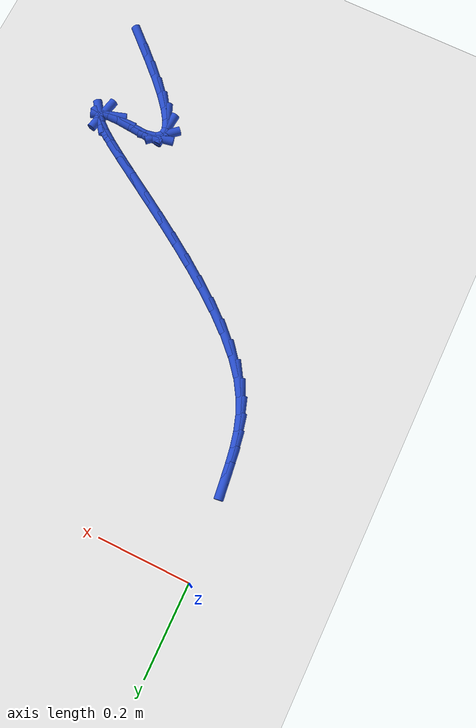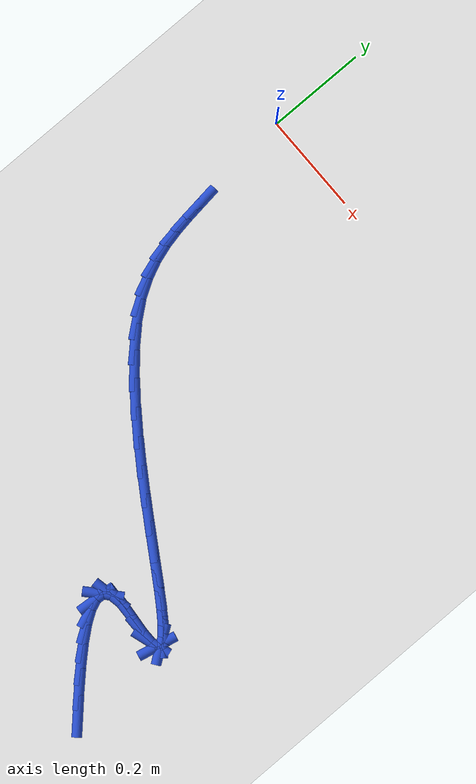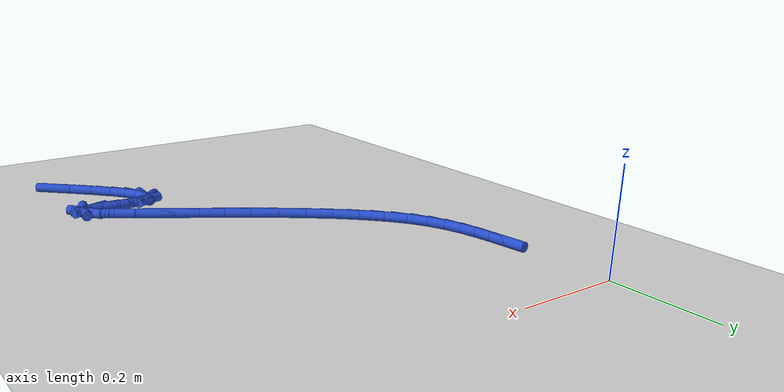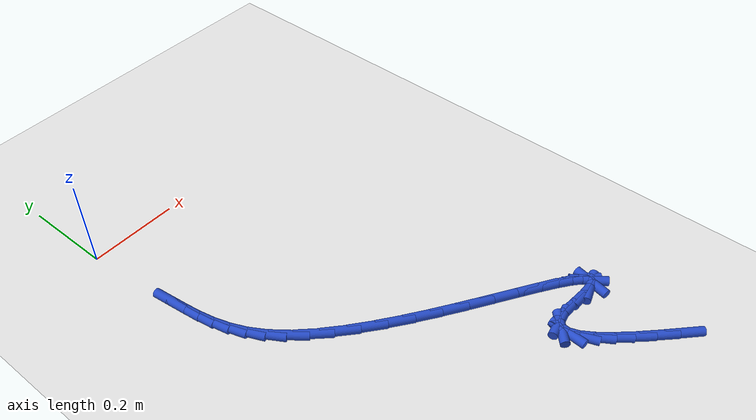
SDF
<sdf version="1.6">
 <world name="default">
  <model name="ground_plane">
   <static>1</static>
   <link name="link">
    <collision name="collision">
     <geometry><plane><normal>0 0 1</normal><size>100 100</size></plane></geometry>
     <surface><friction><ode><mu>100</mu><mu2>50</mu2></ode></friction></surface>
    </collision>
    <visual name="visual">
     <cast_shadows>0</cast_shadows>
     <geometry><plane><normal>0 0 1</normal><size>100 100</size></plane></geometry>
     <material>
      <script><uri>file://media/materials/scripts/gazebo.material</uri><name>Gazebo/WhiteGlow</name></script>
     </material>
    </visual>
   </link>
  </model>
  <model name="line">
   <link name="link_249">
    <pose>0.6120593548678455 -1.016963462170982 0.01 0 1.57 -0.7558949744982144</pose>
    <collision name="collision">
     <geometry><cylinder><radius>0.01</radius><length>0.08</length></cylinder></geometry>
    </collision>
    <visual name="visual">
     <material>
      <script><name>Gazebo/Blue</name><uri>file://media/materials/scripts/gazebo.material</uri></script>
     </material>
     <geometry><cylinder><radius>0.01</radius><length>0.08</length></cylinder></geometry>
    </visual>
   </link>
   <link name="link_250">
    <pose>0.5752487484459166 -0.982263264862262 0.01 0 1.57 -0.780347250309512</pose>
    <collision name="collision">
     <geometry><cylinder><radius>0.01</radius><length>0.08</length></cylinder></geometry>
    </collision>
    <visual name="visual">
     <material>
      <script><name>Gazebo/Blue</name><uri>file://media/materials/scripts/gazebo.material</uri></script>
     </material>
     <geometry><cylinder><radius>0.01</radius><length>0.08</length></cylinder></geometry>
    </visual>
   </link>
   <link name="link_251">
    <pose>0.5420642941654308 -0.9494123523167572 0.01 0 1.57 -0.8189740143601638</pose>
    <collision name="collision">
     <geometry><cylinder><radius>0.01</radius><length>0.08</length></cylinder></geometry>
    </collision>
    <visual name="visual">
     <material>
      <script><name>Gazebo/Blue</name><uri>file://media/materials/scripts/gazebo.material</uri></script>
     </material>
     <geometry><cylinder><radius>0.01</radius><length>0.08</length></cylinder></geometry>
    </visual>
   </link>
   <link name="link_252">
    <pose>0.5135935040853149 -0.9189625080559768 0.01 0 1.57 -0.8813297267739069</pose>
    <collision name="collision">
     <geometry><cylinder><radius>0.01</radius><length>0.08</length></cylinder></geometry>
    </collision>
    <visual name="visual">
     <material>
      <script><name>Gazebo/Blue</name><uri>file://media/materials/scripts/gazebo.material</uri></script>
     </material>
     <geometry><cylinder><radius>0.01</radius><length>0.08</length></cylinder></geometry>
    </visual>
   </link>
   <link name="link_253">
    <pose>0.4909238902644962 -0.8914655156014305 0.01 0 1.57 -0.9889936092993643</pose>
    <collision name="collision">
     <geometry><cylinder><radius>0.01</radius><length>0.08</length></cylinder></geometry>
    </collision>
    <visual name="visual">
     <material>
      <script><name>Gazebo/Blue</name><uri>file://media/materials/scripts/gazebo.material</uri></script>
     </material>
     <geometry><cylinder><radius>0.01</radius><length>0.08</length></cylinder></geometry>
    </visual>
   </link>
   <link name="link_254">
    <pose>0.4751429647619019 -0.8674731584746279 0.01 0 1.57 -1.19764741292546</pose>
    <collision name="collision">
     <geometry><cylinder><radius>0.01</radius><length>0.08</length></cylinder></geometry>
    </collision>
    <visual name="visual">
     <material>
      <script><name>Gazebo/Blue</name><uri>file://media/materials/scripts/gazebo.material</uri></script>
     </material>
     <geometry><cylinder><radius>0.01</radius><length>0.08</length></cylinder></geometry>
    </visual>
   </link>
   <link name="link_255">
    <pose>0.46733823963645926 -0.8475372201970789 0.01 0 1.57 1.488842447986992</pose>
    <collision name="collision">
     <geometry><cylinder><radius>0.01</radius><length>0.08</length></cylinder></geometry>
    </collision>
    <visual name="visual">
     <material>
      <script><name>Gazebo/Blue</name><uri>file://media/materials/scripts/gazebo.material</uri></script>
     </material>
     <geometry><cylinder><radius>0.01</radius><length>0.08</length></cylinder></geometry>
    </visual>
   </link>
   <link name="link_256">
    <pose>0.4685972269470953 -0.8322094842902923 0.01 0 1.57 0.7278815447678283</pose>
    <collision name="collision">
     <geometry><cylinder><radius>0.01</radius><length>0.08</length></cylinder></geometry>
    </collision>
    <visual name="visual">
     <material>
      <script><name>Gazebo/Blue</name><uri>file://media/materials/scripts/gazebo.material</uri></script>
     </material>
     <geometry><cylinder><radius>0.01</radius><length>0.08</length></cylinder></geometry>
    </visual>
   </link>
   <link name="link_257">
    <pose>0.4800074387527375 -0.8220417342757784 0.01 0 1.57 0.19426011480731967</pose>
    <collision name="collision">
     <geometry><cylinder><radius>0.01</radius><length>0.08</length></cylinder></geometry>
    </collision>
    <visual name="visual">
     <material>
      <script><name>Gazebo/Blue</name><uri>file://media/materials/scripts/gazebo.material</uri></script>
     </material>
     <geometry><cylinder><radius>0.01</radius><length>0.08</length></cylinder></geometry>
    </visual>
   </link>
   <link name="link_258">
    <pose>0.5026563871123126 -0.8175857536750464 0.01 0 1.57 -0.0395408759311653</pose>
    <collision name="collision">
     <geometry><cylinder><radius>0.01</radius><length>0.08</length></cylinder></geometry>
    </collision>
    <visual name="visual">
     <material>
      <script><name>Gazebo/Blue</name><uri>file://media/materials/scripts/gazebo.material</uri></script>
     </material>
     <geometry><cylinder><radius>0.01</radius><length>0.08</length></cylinder></geometry>
    </visual>
   </link>
   <link name="link_259">
    <pose>0.5365182909957565 -0.8189253812487708 0.01 0 1.57 -0.0896402998434432</pose>
    <collision name="collision">
     <geometry><cylinder><radius>0.01</radius><length>0.08</length></cylinder></geometry>
    </collision>
    <visual name="visual">
     <material>
      <script><name>Gazebo/Blue</name><uri>file://media/materials/scripts/gazebo.material</uri></script>
     </material>
     <geometry><cylinder><radius>0.01</radius><length>0.08</length></cylinder></geometry>
    </visual>
   </link>
   <link name="link_260">
    <pose>0.5719741749338321 -0.8221121976560779 0.01 0 1.57 0.00028335559197801815</pose>
    <collision name="collision">
     <geometry><cylinder><radius>0.01</radius><length>0.08</length></cylinder></geometry>
    </collision>
    <visual name="visual">
     <material>
      <script><name>Gazebo/Blue</name><uri>file://media/materials/scripts/gazebo.material</uri></script>
     </material>
     <geometry><cylinder><radius>0.01</radius><length>0.08</length></cylinder></geometry>
    </visual>
   </link>
   <link name="link_261">
    <pose>0.5969206920723124 -0.8221051289207572 0.01 0 1.57 0.3092605812015715</pose>
    <collision name="collision">
     <geometry><cylinder><radius>0.01</radius><length>0.08</length></cylinder></geometry>
    </collision>
    <visual name="visual">
     <material>
      <script><name>Gazebo/Blue</name><uri>file://media/materials/scripts/gazebo.material</uri></script>
     </material>
     <geometry><cylinder><radius>0.01</radius><length>0.08</length></cylinder></geometry>
    </visual>
   </link>
   <link name="link_262">
    <pose>0.6096702722350557 -0.8180314798665221 0.01 0 1.57 1.3590167053113869</pose>
    <collision name="collision">
     <geometry><cylinder><radius>0.01</radius><length>0.08</length></cylinder></geometry>
    </collision>
    <visual name="visual">
     <material>
      <script><name>Gazebo/Blue</name><uri>file://media/materials/scripts/gazebo.material</uri></script>
     </material>
     <geometry><cylinder><radius>0.01</radius><length>0.08</length></cylinder></geometry>
    </visual>
   </link>
   <link name="link_263">
    <pose>0.6113645971054703 -0.8101510318126156 0.01 0 1.57 -0.947266835787415</pose>
    <collision name="collision">
     <geometry><cylinder><radius>0.01</radius><length>0.08</length></cylinder></geometry>
    </collision>
    <visual name="visual">
     <material>
      <script><name>Gazebo/Blue</name><uri>file://media/materials/scripts/gazebo.material</uri></script>
     </material>
     <geometry><cylinder><radius>0.01</radius><length>0.08</length></cylinder></geometry>
    </visual>
   </link>
   <link name="link_264">
    <pose>0.6031453966618925 -0.7987235854094928 0.01 0 1.57 -0.713724719342537</pose>
    <collision name="collision">
     <geometry><cylinder><radius>0.01</radius><length>0.08</length></cylinder></geometry>
    </collision>
    <visual name="visual">
     <material>
      <script><name>Gazebo/Blue</name><uri>file://media/materials/scripts/gazebo.material</uri></script>
     </material>
     <geometry><cylinder><radius>0.01</radius><length>0.08</length></cylinder></geometry>
    </visual>
   </link>
   <link name="link_265">
    <pose>0.5861544008826584 -0.784008941307609 0.01 0 1.57 -0.6244208868983006</pose>
    <collision name="collision">
     <geometry><cylinder><radius>0.01</radius><length>0.08</length></cylinder></geometry>
    </collision>
    <visual name="visual">
     <material>
      <script><name>Gazebo/Blue</name><uri>file://media/materials/scripts/gazebo.material</uri></script>
     </material>
     <geometry><cylinder><radius>0.01</radius><length>0.08</length></cylinder></geometry>
    </visual>
   </link>
   <link name="link_266">
    <pose>0.561533339746103 -0.7662669001574187 0.01 0 1.57 -0.5828676028600679</pose>
    <collision name="collision">
     <geometry><cylinder><radius>0.01</radius><length>0.08</length></cylinder></geometry>
    </collision>
    <visual name="visual">
     <material>
      <script><name>Gazebo/Blue</name><uri>file://media/materials/scripts/gazebo.material</uri></script>
     </material>
     <geometry><cylinder><radius>0.01</radius><length>0.08</length></cylinder></geometry>
    </visual>
   </link>
   <link name="link_267">
    <pose>0.5304239432305619 -0.7457572626093769 0.01 0 1.57 -0.563170947972346</pose>
    <collision name="collision">
     <geometry><cylinder><radius>0.01</radius><length>0.08</length></cylinder></geometry>
    </collision>
    <visual name="visual">
     <material>
      <script><name>Gazebo/Blue</name><uri>file://media/materials/scripts/gazebo.material</uri></script>
     </material>
     <geometry><cylinder><radius>0.01</radius><length>0.08</length></cylinder></geometry>
    </visual>
   </link>
   <link name="link_268">
    <pose>0.4939679413143716 -0.7227398293139397 0.01 0 1.57 -0.5559843467165475</pose>
    <collision name="collision">
     <geometry><cylinder><radius>0.01</radius><length>0.08</length></cylinder></geometry>
    </collision>
    <visual name="visual">
     <material>
      <script><name>Gazebo/Blue</name><uri>file://media/materials/scripts/gazebo.material</uri></script>
     </material>
     <geometry><cylinder><radius>0.01</radius><length>0.08</length></cylinder></geometry>
    </visual>
   </link>
   <link name="link_269">
    <pose>0.45330706397586745 -0.6974744009215612 0.01 0 1.57 -0.557383147484613</pose>
    <collision name="collision">
     <geometry><cylinder><radius>0.01</radius><length>0.08</length></cylinder></geometry>
    </collision>
    <visual name="visual">
     <material>
      <script><name>Gazebo/Blue</name><uri>file://media/materials/scripts/gazebo.material</uri></script>
     </material>
     <geometry><cylinder><radius>0.01</radius><length>0.08</length></cylinder></geometry>
    </visual>
   </link>
   <link name="link_270">
    <pose>0.4095830411933855 -0.6702207780826974 0.01 0 1.57 -0.5657137409658505</pose>
    <collision name="collision">
     <geometry><cylinder><radius>0.01</radius><length>0.08</length></cylinder></geometry>
    </collision>
    <visual name="visual">
     <material>
      <script><name>Gazebo/Blue</name><uri>file://media/materials/scripts/gazebo.material</uri></script>
     </material>
     <geometry><cylinder><radius>0.01</radius><length>0.08</length></cylinder></geometry>
    </visual>
   </link>
   <link name="link_271">
    <pose>0.3639376029452616 -0.6412387614478031 0.01 0 1.57 -0.5805172620399537</pose>
    <collision name="collision">
     <geometry><cylinder><radius>0.01</radius><length>0.08</length></cylinder></geometry>
    </collision>
    <visual name="visual">
     <material>
      <script><name>Gazebo/Blue</name><uri>file://media/materials/scripts/gazebo.material</uri></script>
     </material>
     <geometry><cylinder><radius>0.01</radius><length>0.08</length></cylinder></geometry>
    </visual>
   </link>
   <link name="link_272">
    <pose>0.31751247920983133 -0.6107881516673335 0.01 0 1.57 -0.6021551797211879</pose>
    <collision name="collision">
     <geometry><cylinder><radius>0.01</radius><length>0.08</length></cylinder></geometry>
    </collision>
    <visual name="visual">
     <material>
      <script><name>Gazebo/Blue</name><uri>file://media/materials/scripts/gazebo.material</uri></script>
     </material>
     <geometry><cylinder><radius>0.01</radius><length>0.08</length></cylinder></geometry>
    </visual>
   </link>
   <link name="link_273">
    <pose>0.27144939996543066 -0.5791287493917434 0.01 0 1.57 -0.6317494596136181</pose>
    <collision name="collision">
     <geometry><cylinder><radius>0.01</radius><length>0.08</length></cylinder></geometry>
    </collision>
    <visual name="visual">
     <material>
      <script><name>Gazebo/Blue</name><uri>file://media/materials/scripts/gazebo.material</uri></script>
     </material>
     <geometry><cylinder><radius>0.01</radius><length>0.08</length></cylinder></geometry>
    </visual>
   </link>
   <link name="link_274">
    <pose>0.22689009519039532 -0.5465203552714885 0.01 0 1.57 -0.671335432647464</pose>
    <collision name="collision">
     <geometry><cylinder><radius>0.01</radius><length>0.08</length></cylinder></geometry>
    </collision>
    <visual name="visual">
     <material>
      <script><name>Gazebo/Blue</name><uri>file://media/materials/scripts/gazebo.material</uri></script>
     </material>
     <geometry><cylinder><radius>0.01</radius><length>0.08</length></cylinder></geometry>
    </visual>
   </link>
   <link name="link_275">
    <pose>0.1849762948630612 -0.5132227699570237 0.01 0 1.57 -0.7242445432749</pose>
    <collision name="collision">
     <geometry><cylinder><radius>0.01</radius><length>0.08</length></cylinder></geometry>
    </collision>
    <visual name="visual">
     <material>
      <script><name>Gazebo/Blue</name><uri>file://media/materials/scripts/gazebo.material</uri></script>
     </material>
     <geometry><cylinder><radius>0.01</radius><length>0.08</length></cylinder></geometry>
    </visual>
   </link>
   <link name="link_276">
    <pose>0.146849728961764 -0.47949579409880394 0.01 0 1.57 -0.7958154470340988</pose>
    <collision name="collision">
     <geometry><cylinder><radius>0.01</radius><length>0.08</length></cylinder></geometry>
    </collision>
    <visual name="visual">
     <material>
      <script><name>Gazebo/Blue</name><uri>file://media/materials/scripts/gazebo.material</uri></script>
     </material>
     <geometry><cylinder><radius>0.01</radius><length>0.08</length></cylinder></geometry>
    </visual>
   </link>
   <link name="link_277">
    <pose>0.11365212746483963 -0.44559922834728477 0.01 0 1.57 -0.8944985609526818</pose>
    <collision name="collision">
     <geometry><cylinder><radius>0.01</radius><length>0.08</length></cylinder></geometry>
    </collision>
    <visual name="visual">
     <material>
      <script><name>Gazebo/Blue</name><uri>file://media/materials/scripts/gazebo.material</uri></script>
     </material>
     <geometry><cylinder><radius>0.01</radius><length>0.08</length></cylinder></geometry>
    </visual>
   </link>
   <link name="link_278">
    <pose>0.08651995884221855 -0.4117920474293897 0.01 0 1.57 -1.0196635382876966</pose>
    <collision name="collision">
     <geometry><cylinder><radius>0.01</radius><length>0.08</length></cylinder></geometry>
    </collision>
    <visual name="visual">
     <material>
      <script><name>Gazebo/Blue</name><uri>file://media/materials/scripts/gazebo.material</uri></script>
     </material>
     <geometry><cylinder><radius>0.01</radius><length>0.08</length></cylinder></geometry>
    </visual>
   </link>
   <link name="link_279">
    <pose>0.06588610940018366 -0.3782227814959948 0.01 0 1.57 -1.1460711238531114</pose>
    <collision name="collision">
     <geometry><cylinder><radius>0.01</radius><length>0.08</length></cylinder></geometry>
    </collision>
    <visual name="visual">
     <material>
      <script><name>Gazebo/Blue</name><uri>file://media/materials/scripts/gazebo.material</uri></script>
     </material>
     <geometry><cylinder><radius>0.01</radius><length>0.08</length></cylinder></geometry>
    </visual>
   </link>
   <link name="link_280">
    <pose>0.05077943348573545 -0.3448195632483082 0.01 0 1.57 -1.2597315476728104</pose>
    <collision name="collision">
     <geometry><cylinder><radius>0.01</radius><length>0.08</length></cylinder></geometry>
    </collision>
    <visual name="visual">
     <material>
      <script><name>Gazebo/Blue</name><uri>file://media/materials/scripts/gazebo.material</uri></script>
     </material>
     <geometry><cylinder><radius>0.01</radius><length>0.08</length></cylinder></geometry>
    </visual>
   </link>
   <link name="link_281">
    <pose>0.04006210095451427 -0.31148436014496184 0.01 0 1.57 -1.3506619462482303</pose>
    <collision name="collision">
     <geometry><cylinder><radius>0.01</radius><length>0.08</length></cylinder></geometry>
    </collision>
    <visual name="visual">
     <material>
      <script><name>Gazebo/Blue</name><uri>file://media/materials/scripts/gazebo.material</uri></script>
     </material>
     <geometry><cylinder><radius>0.01</radius><length>0.08</length></cylinder></geometry>
    </visual>
   </link>
   <link name="link_282">
    <pose>0.03259628166216194 -0.2781191396445905 0.01 0 1.57 -1.4123386526402284</pose>
    <collision name="collision">
     <geometry><cylinder><radius>0.01</radius><length>0.08</length></cylinder></geometry>
    </collision>
    <visual name="visual">
     <material>
      <script><name>Gazebo/Blue</name><uri>file://media/materials/scripts/gazebo.material</uri></script>
     </material>
     <geometry><cylinder><radius>0.01</radius><length>0.08</length></cylinder></geometry>
    </visual>
   </link>
   <link name="link_283">
    <pose>0.027244145464319764 -0.2446258692058286 0.01 0 1.57 -1.4417424787903805</pose>
    <collision name="collision">
     <geometry><cylinder><radius>0.01</radius><length>0.08</length></cylinder></geometry>
    </collision>
    <visual name="visual">
     <material>
      <script><name>Gazebo/Blue</name><uri>file://media/materials/scripts/gazebo.material</uri></script>
     </material>
     <geometry><cylinder><radius>0.01</radius><length>0.08</length></cylinder></geometry>
    </visual>
   </link>
   <link name="link_284">
    <pose>0.022868214247313213 -0.2109065287263139 0.01 0 1.57 -1.4464794555660003</pose>
    <collision name="collision">
     <geometry><cylinder><radius>0.01</radius><length>0.08</length></cylinder></geometry>
    </collision>
    <visual name="visual">
     <material>
      <script><name>Gazebo/Blue</name><uri>file://media/materials/scripts/gazebo.material</uri></script>
     </material>
     <geometry><cylinder><radius>0.01</radius><length>0.08</length></cylinder></geometry>
    </visual>
   </link>
  </model>
 </world>
</sdf>
